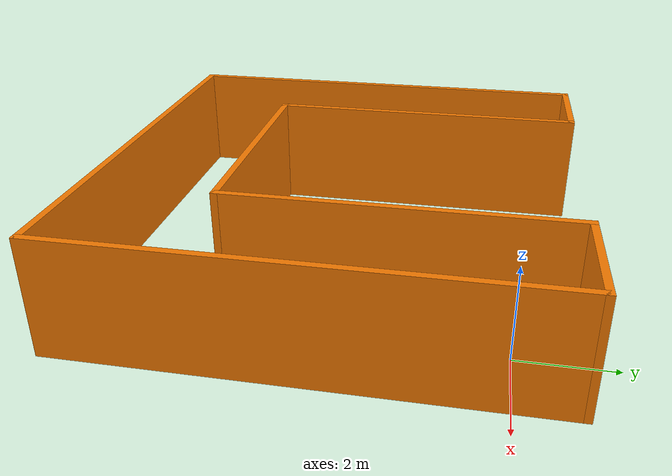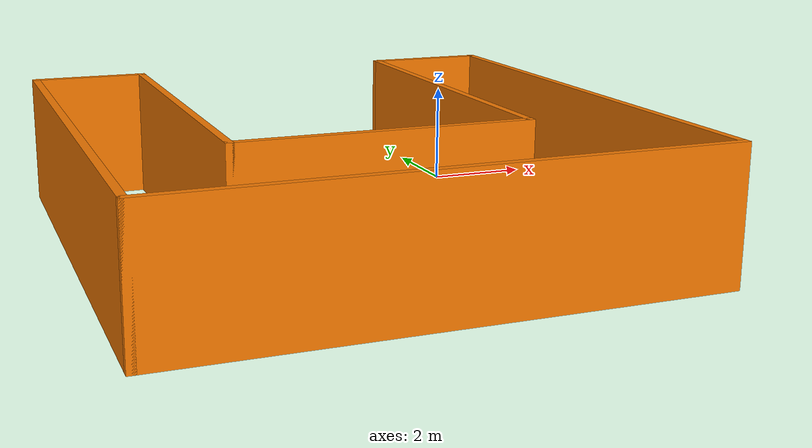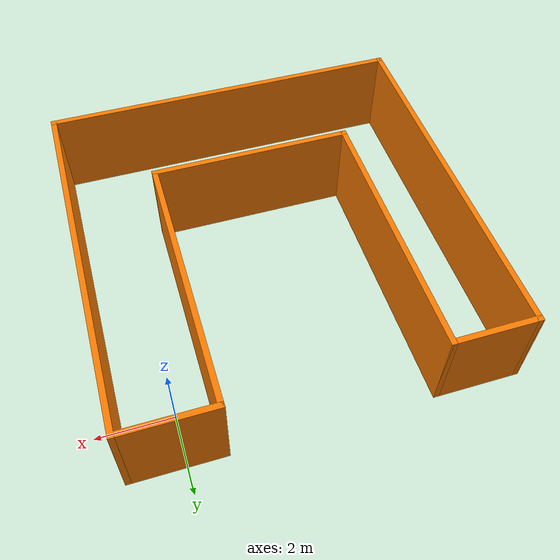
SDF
<?xml version='1.0'?>
<sdf version='1.6'>
  <model name='building'>
    <pose frame=''>-3.54371 -3.67459 0 0 -0 0</pose>
    <link name='Wall_11'>
      <collision name='Wall_11_Collision'>
        <geometry>
          <box>
            <size>10.0346 0.15 2.5</size>
          </box>
        </geometry>
        <pose frame=''>0 0 1.25 0 -0 0</pose>
      </collision>
      <visual name='Wall_11_Visual'>
        <pose frame=''>0 0 1.25 0 -0 0</pose>
        <geometry>
          <box>
            <size>10.0346 0.15 2.5</size>
          </box>
        </geometry>
        <material>
          <script>
            <uri>file://media/materials/scripts/gazebo.material</uri>
            <name>Gazebo/Grey</name>
          </script>
          <ambient>0.960784 0.47451 0 1</ambient>
        </material>
        <meta>
          <layer>0</layer>
        </meta>
      </visual>
      <pose frame=''>0 -4.925 0 0 -0 0</pose>
    </link>
    <link name='Wall_13'>
      <collision name='Wall_13_Collision'>
        <geometry>
          <box>
            <size>10 0.15 2.5</size>
          </box>
        </geometry>
        <pose frame=''>0 0 1.25 0 -0 0</pose>
      </collision>
      <visual name='Wall_13_Visual'>
        <pose frame=''>0 0 1.25 0 -0 0</pose>
        <geometry>
          <box>
            <size>10 0.15 2.5</size>
          </box>
        </geometry>
        <material>
          <script>
            <uri>file://media/materials/scripts/gazebo.material</uri>
            <name>Gazebo/Grey</name>
          </script>
          <ambient>0.960784 0.47451 0 1</ambient>
        </material>
        <meta>
          <layer>0</layer>
        </meta>
      </visual>
      <pose frame=''>-4.94229 0 0 0 -0 1.5708</pose>
    </link>
    <link name='Wall_15'>
      <collision name='Wall_15_Collision'>
        <geometry>
          <box>
            <size>10 0.15 2.5</size>
          </box>
        </geometry>
        <pose frame=''>0 0 1.25 0 -0 0</pose>
      </collision>
      <visual name='Wall_15_Visual'>
        <pose frame=''>0 0 1.25 0 -0 0</pose>
        <geometry>
          <box>
            <size>10 0.15 2.5</size>
          </box>
        </geometry>
        <material>
          <script>
            <uri>file://media/materials/scripts/gazebo.material</uri>
            <name>Gazebo/Grey</name>
          </script>
          <ambient>0.960784 0.47451 0 1</ambient>
        </material>
        <meta>
          <layer>0</layer>
        </meta>
      </visual>
      <pose frame=''>4.94229 0 0 0 -0 1.5708</pose>
    </link>
    <link name='Wall_17'>
      <collision name='Wall_17_Collision'>
        <geometry>
          <box>
            <size>2.5 0.15 2.5</size>
          </box>
        </geometry>
        <pose frame=''>0 0 1.25 0 -0 0</pose>
      </collision>
      <visual name='Wall_17_Visual'>
        <pose frame=''>0 0 1.25 0 -0 0</pose>
        <geometry>
          <box>
            <size>2.5 0.15 2.5</size>
          </box>
        </geometry>
        <material>
          <script>
            <uri>file://media/materials/scripts/gazebo.material</uri>
            <name>Gazebo/Grey</name>
          </script>
          <ambient>0.960784 0.47451 0 1</ambient>
        </material>
        <meta>
          <layer>0</layer>
        </meta>
      </visual>
      <pose frame=''>3.76729 4.925 0 0 -0 3.14159</pose>
    </link>
    <link name='Wall_19'>
      <collision name='Wall_19_Collision'>
        <geometry>
          <box>
            <size>2.32259 0.15 2.5</size>
          </box>
        </geometry>
        <pose frame=''>0 0 1.25 0 -0 0</pose>
      </collision>
      <visual name='Wall_19_Visual'>
        <pose frame=''>0 0 1.25 0 -0 0</pose>
        <geometry>
          <box>
            <size>2.32259 0.15 2.5</size>
          </box>
        </geometry>
        <material>
          <script>
            <uri>file://media/materials/scripts/gazebo.material</uri>
            <name>Gazebo/Grey</name>
          </script>
          <ambient>0.960784 0.47451 0 1</ambient>
        </material>
        <meta>
          <layer>0</layer>
        </meta>
      </visual>
      <pose frame=''>-3.856 4.925 0 0 -0 0</pose>
    </link>
    <link name='Wall_21'>
      <collision name='Wall_21_Collision'>
        <geometry>
          <box>
            <size>7.25 0.15 2.5</size>
          </box>
        </geometry>
        <pose frame=''>0 0 1.25 0 -0 0</pose>
      </collision>
      <visual name='Wall_21_Visual'>
        <pose frame=''>0 0 1.25 0 -0 0</pose>
        <geometry>
          <box>
            <size>7.25 0.15 2.5</size>
          </box>
        </geometry>
        <material>
          <script>
            <uri>file://media/materials/scripts/gazebo.material</uri>
            <name>Gazebo/Grey</name>
          </script>
          <ambient>0.960784 0.47451 0 1</ambient>
        </material>
        <meta>
          <layer>0</layer>
        </meta>
      </visual>
      <pose frame=''>2.59229 1.375 0 0 -0 -1.5708</pose>
    </link>
    <link name='Wall_25'>
      <collision name='Wall_25_Collision'>
        <geometry>
          <box>
            <size>7.25 0.15 2.5</size>
          </box>
        </geometry>
        <pose frame=''>0 0 1.25 0 -0 0</pose>
      </collision>
      <visual name='Wall_25_Visual'>
        <pose frame=''>0 0 1.25 0 -0 0</pose>
        <geometry>
          <box>
            <size>7.25 0.15 2.5</size>
          </box>
        </geometry>
        <material>
          <script>
            <uri>file://media/materials/scripts/gazebo.material</uri>
            <name>Gazebo/Grey</name>
          </script>
          <ambient>0.960784 0.47451 0 1</ambient>
        </material>
        <meta>
          <layer>0</layer>
        </meta>
      </visual>
      <pose frame=''>-2.7697 1.375 0 0 -0 -1.5708</pose>
    </link>
    <link name='Wall_26'>
      <collision name='Wall_26_Collision'>
        <geometry>
          <box>
            <size>5.512 0.15 2.5</size>
          </box>
        </geometry>
        <pose frame=''>0 0 1.25 0 -0 0</pose>
      </collision>
      <visual name='Wall_26_Visual'>
        <pose frame=''>0 0 1.25 0 -0 0</pose>
        <geometry>
          <box>
            <size>5.512 0.15 2.5</size>
          </box>
        </geometry>
        <material>
          <script>
            <uri>file://media/materials/scripts/gazebo.material</uri>
            <name>Gazebo/Grey</name>
          </script>
          <ambient>0.960784 0.47451 0 1</ambient>
        </material>
        <meta>
          <layer>0</layer>
        </meta>
      </visual>
      <pose frame=''>-0.088705 -2.175 0 0 -0 0</pose>
    </link>
    <static>1</static>
  </model>
</sdf>
